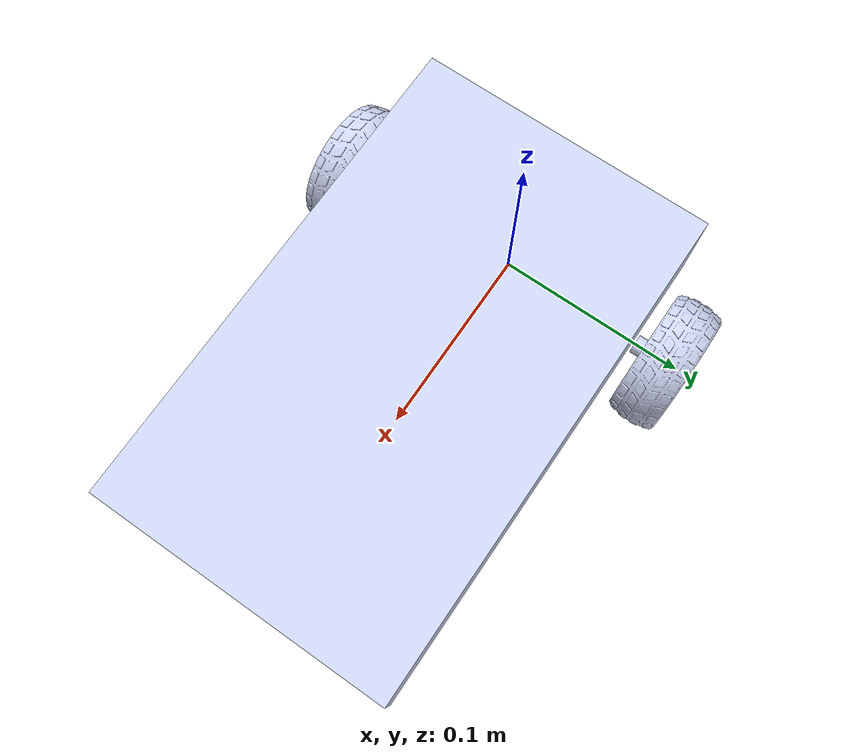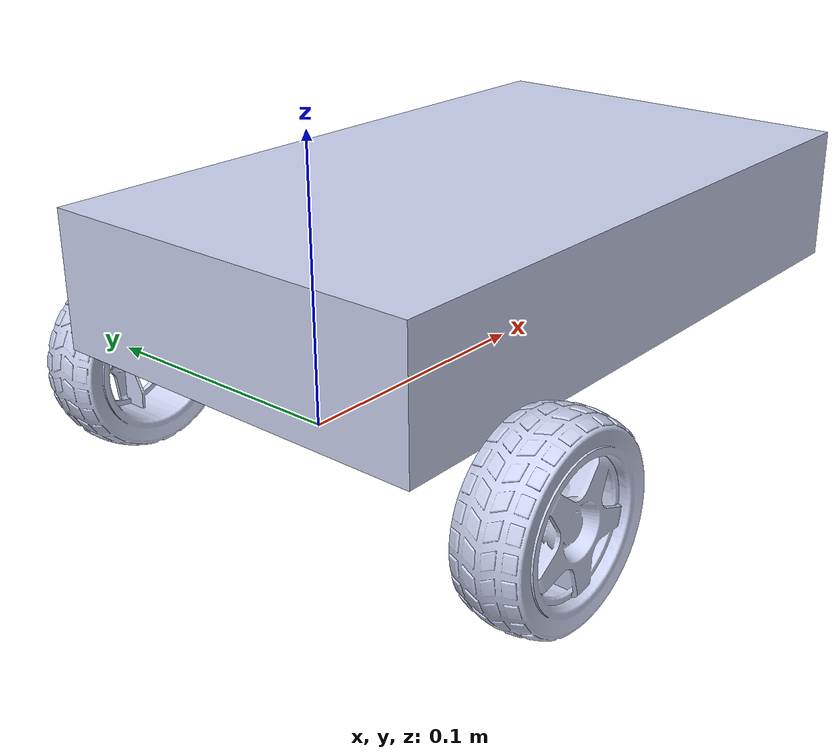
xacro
<?xml version="1.0"?>
<robot xmlns:xacro="http://www.ros.org/wiki/xacro" >

  <link name="base_link">
  </link>
  <link name="chassis">
    <inertial>
      <origin
        xyz="0.082664 -0.00032308 0.0045523"
        rpy="0 0 0" />
      <mass
        value="0.80581" />
      <inertia
        ixx="0.0008436"
        ixy="3.5973E-07"
        ixz="3.1609E-21"
        iyy="0.0019625"
        iyz="-5.6881E-22"
        izz="0.0027709" />
    </inertial>
    <visual>
      <origin
        xyz="0.125 0 0.025"
        rpy="0 0 0" />
      <geometry>
        <box size="0.25 0.15 0.05"/>
      </geometry>
      <material
        name="">
        <color
          rgba="0.79216 0.81961 0.93333 1" />
      </material>
    </visual>
    <collision>
      <origin
        xyz="0.125 0 0.025"
        rpy="0 0 0" />
      <geometry>
        <box size="0.25 0.15 0.05"/>
      </geometry>
    </collision>
  </link>
  <joint name="chassis_joint"
    type="fixed">
    <origin
      xyz="-0.04 3.8262E-05 0.02"
      rpy="0 0 0" />
    <parent
      link="base_link" />
    <child
      link="chassis" />
    <axis
      xyz="0 0 0" />
  </joint>
  <link name="caster_wheel">
    <inertial>
      <origin
        xyz="0 0 0.0030103"
        rpy="0 0 0" />
      <mass
        value="0.0036843" />
      <inertia
        ixx="1.6553E-07"
        ixy="2.6765E-16"
        ixz="-3.43E-23"
        iyy="1.3764E-07"
        iyz="-4.1716E-23"
        izz="2.4862E-07" />
    </inertial>
    <visual>
      <origin
        xyz="0 0 0"
        rpy="0 0 0" />
      <geometry>
          <sphere radius="0.007"/>
      </geometry>
      <material
        name="">
        <color
          rgba="0.79216 0.81961 0.93333 1" />
      </material>
    </visual>
    <collision>
      <origin
        xyz="0 0 0"
        rpy="0 0 0" />
      <geometry>
          <sphere radius="0.007"/>
      </geometry>
    </collision>
  </link>
  <joint name="caster_wheel_joint"
    type="fixed">
    <origin
      xyz="0.22 -0.00014975 -0.0476"
      rpy="0 0 0" />
    <parent
      link="chassis" />
    <child
      link="caster_wheel" />
    <axis
      xyz="0 0 0" />
  </joint>

  <link name="left_wheel">
    <inertial>
      <origin
        xyz="1.3946E-08 -0.007373 -1.2357E-08"
        rpy="0 0 0" />
      <mass
        value="0.022902" />
      <inertia
        ixx="9.2315E-06"
        ixy="-3.296E-13"
        ixz="-2.4757E-10"
        iyy="1.553E-05"
        iyz="2.9149E-13"
        izz="9.2314E-06" />
    </inertial>
    <visual>
      <origin
        xyz="0 0 0"
        rpy="0 0 0" />
      <geometry>
        <mesh
          filename="file:$(find my_mobrob)/meshes/left_wheel.STL" />
      </geometry>
      <material
        name="">
        <color
          rgba="0.79216 0.81961 0.93333 1" />
      </material>
    </visual>
    <collision>
      <origin
        xyz="0 8.6E-03 0"
        rpy="0 0 0" />
      <geometry>
        <mesh
          filename="file:$(find my_mobrob)/meshes/left_wheel.STL" />
      </geometry>
    </collision>
  </link>

  <joint name="left_wheel_joint"
    type="continuous">
    <origin
      xyz="0 0.10139 0"
      rpy="0 0 0" />
    <parent
      link="base_link" />
    <child
      link="left_wheel" />
    <axis
      xyz="0 1 0" />
  </joint>

  <link name="right_wheel">
    <inertial>
      <origin
        xyz="2.5267E-09 0.007373 1.8461E-08"
        rpy="0 0 0" />
      <mass
        value="0.022902" />
      <inertia
        ixx="9.2312E-06"
        ixy="6.0082E-14"
        ixz="1.0223E-10"
        iyy="1.553E-05"
        iyz="4.3588E-13"
        izz="9.2317E-06" />
    </inertial>
    <visual>
      <origin
        xyz="0 0 0"
        rpy="0 0 0" />
      <geometry>
        <mesh
          filename="file:$(find my_mobrob)/meshes/right_wheel.STL" />
      </geometry>
      <material
        name="">
        <color
          rgba="0.79216 0.81961 0.93333 1" />
      </material>
    </visual>
    <collision>
      <origin
        xyz="0 0 0"
        rpy="0 0 0" />
      <geometry>
        <mesh
          filename="file:$(find my_mobrob)/meshes/right_wheel.STL" />
      </geometry>
    </collision>
  </link>

  <joint name="right_wheel_joint"
    type="continuous">
    <origin
      xyz="0 -0.10161 0"
      rpy="0 0 0" />
    <parent
      link="base_link" />
    <child
      link="right_wheel" />
    <axis
      xyz="0 1 0" />
  </joint>

</robot>
